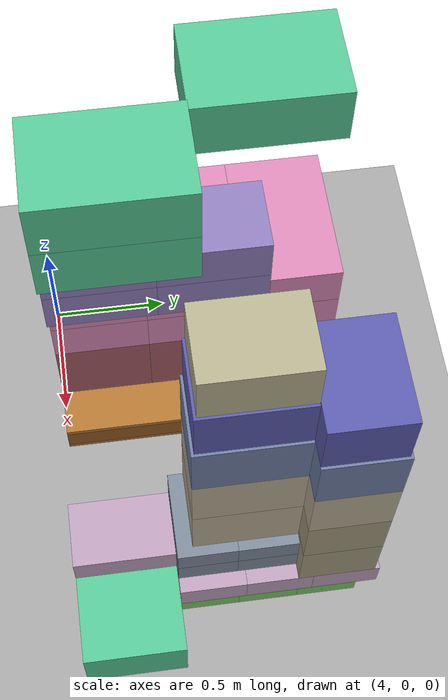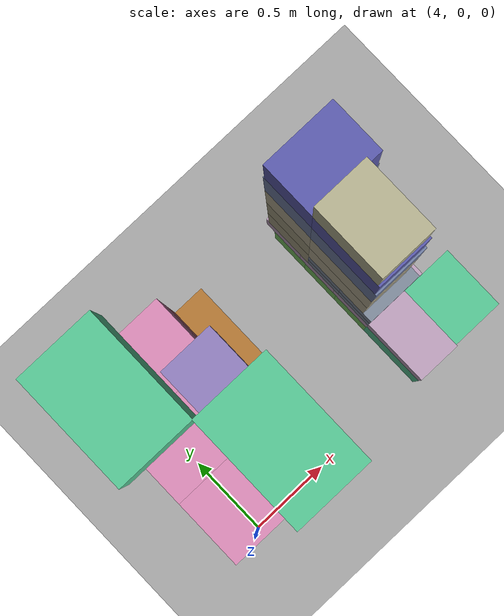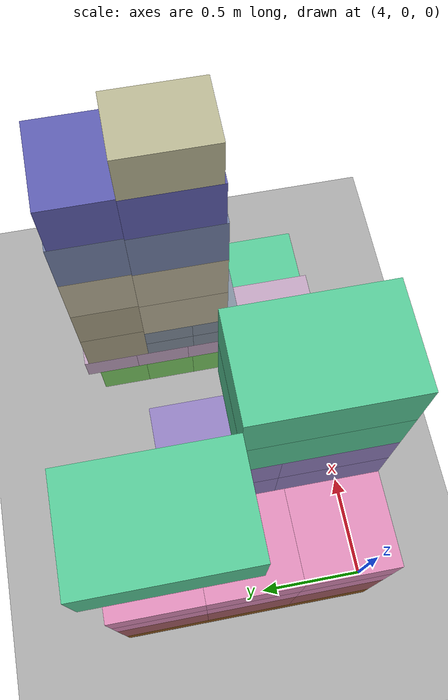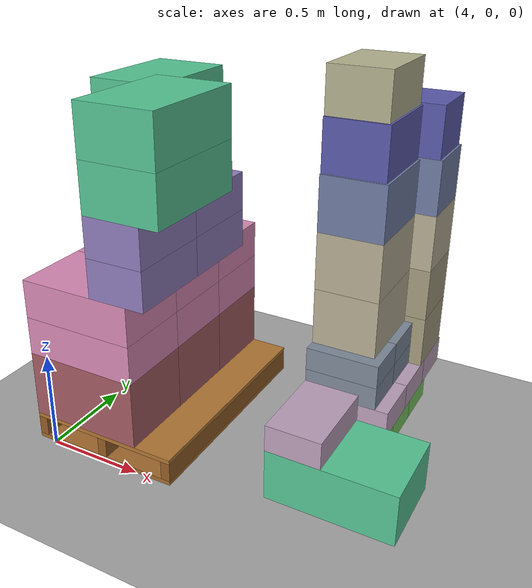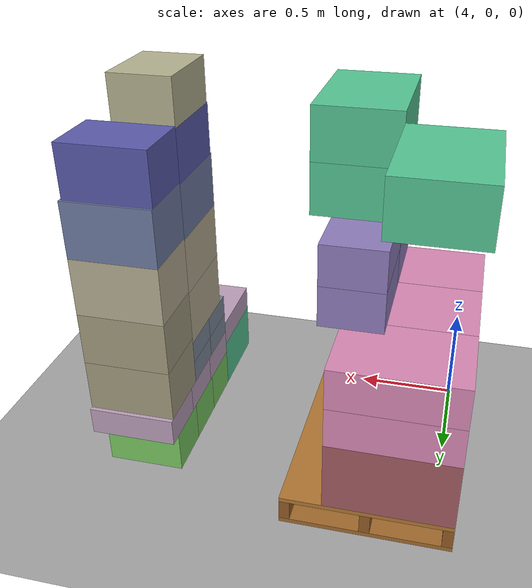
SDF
<sdf version="1.10">
 <world name="pallet_towers">
  <model name="ground_plane">
   <static>true</static>
   <link name="link">
    <collision name="collision">
     <geometry><plane><normal>0 0 1</normal><size>30 30</size></plane></geometry>
     <surface>
      <friction><ode><mu>0.55</mu><mu2>0.55</mu2></ode></friction>
      <bounce><restitution_coefficient>0</restitution_coefficient><threshold>100000</threshold></bounce>
      <contact><ode><kp>1000000</kp><kd>100</kd><max_vel>1</max_vel><min_depth>0.0005</min_depth></ode></contact>
     </surface>
    </collision>
    <visual name="visual">
     <geometry><plane><normal>0 0 1</normal><size>30 30</size></plane></geometry>
     <material><ambient>0.65 0.65 0.65 1</ambient><diffuse>0.65 0.65 0.65 1</diffuse></material>
    </visual>
   </link>
  </model>
  <model name="pallet_04_P04">
   <static>false</static>
   <pose>4.3 0.6 0.002 0 0 0</pose>
   <allow_auto_disable>false</allow_auto_disable>
   <link name="body">
    <inertial>
     <pose>0 0 0.072 0 0 0</pose>
     <mass>25</mass>
     <inertia>
      <ixx>3.07216082</ixx>
      <ixy>0</ixy>
      <ixz>0</ixz>
      <iyy>1.70896776</iyy>
      <iyz>0</iyz>
      <izz>4.63680694</izz>
     </inertia>
    </inertial>
    <collision name="bottom_deck_collision">
     <pose>0 0 0.011 0 0 0</pose>
     <geometry><box><size>0.8 1.2 0.022</size></box></geometry>
     <surface>
      <friction><ode><mu>0.55</mu><mu2>0.55</mu2></ode></friction>
      <bounce><restitution_coefficient>0</restitution_coefficient><threshold>100000</threshold></bounce>
      <contact><ode><kp>1000000</kp><kd>100</kd><max_vel>1</max_vel><min_depth>0.0005</min_depth></ode></contact>
     </surface>
    </collision>
    <visual name="bottom_deck_visual">
     <pose>0 0 0.011 0 0 0</pose>
     <geometry><box><size>0.8 1.2 0.022</size></box></geometry>
     <material>
      <ambient>0.46 0.28 0.10 1</ambient>
      <diffuse>0.64 0.42 0.18 1</diffuse>
      <specular>0.03 0.03 0.03 1</specular>
     </material>
    </visual>
    <collision name="left_stringer_collision">
     <pose>-0.375 0 0.072 0 0 0</pose>
     <geometry><box><size>0.05 1.2 0.1</size></box></geometry>
     <surface>
      <friction><ode><mu>0.55</mu><mu2>0.55</mu2></ode></friction>
      <bounce><restitution_coefficient>0</restitution_coefficient><threshold>100000</threshold></bounce>
      <contact><ode><kp>1000000</kp><kd>100</kd><max_vel>1</max_vel><min_depth>0.0005</min_depth></ode></contact>
     </surface>
    </collision>
    <visual name="left_stringer_visual">
     <pose>-0.375 0 0.072 0 0 0</pose>
     <geometry><box><size>0.05 1.2 0.1</size></box></geometry>
     <material>
      <ambient>0.42 0.25 0.09 1</ambient>
      <diffuse>0.58 0.36 0.14 1</diffuse>
      <specular>0.03 0.03 0.03 1</specular>
     </material>
    </visual>
    <collision name="centre_stringer_collision">
     <pose>0 0 0.072 0 0 0</pose>
     <geometry><box><size>0.05 1.2 0.1</size></box></geometry>
     <surface>
      <friction><ode><mu>0.55</mu><mu2>0.55</mu2></ode></friction>
      <bounce><restitution_coefficient>0</restitution_coefficient><threshold>100000</threshold></bounce>
      <contact><ode><kp>1000000</kp><kd>100</kd><max_vel>1</max_vel><min_depth>0.0005</min_depth></ode></contact>
     </surface>
    </collision>
    <visual name="centre_stringer_visual">
     <pose>0 0 0.072 0 0 0</pose>
     <geometry><box><size>0.05 1.2 0.1</size></box></geometry>
     <material>
      <ambient>0.42 0.25 0.09 1</ambient>
      <diffuse>0.58 0.36 0.14 1</diffuse>
      <specular>0.03 0.03 0.03 1</specular>
     </material>
    </visual>
    <collision name="right_stringer_collision">
     <pose>0.375 0 0.072 0 0 0</pose>
     <geometry><box><size>0.05 1.2 0.1</size></box></geometry>
     <surface>
      <friction><ode><mu>0.55</mu><mu2>0.55</mu2></ode></friction>
      <bounce><restitution_coefficient>0</restitution_coefficient><threshold>100000</threshold></bounce>
      <contact><ode><kp>1000000</kp><kd>100</kd><max_vel>1</max_vel><min_depth>0.0005</min_depth></ode></contact>
     </surface>
    </collision>
    <visual name="right_stringer_visual">
     <pose>0.375 0 0.072 0 0 0</pose>
     <geometry><box><size>0.05 1.2 0.1</size></box></geometry>
     <material>
      <ambient>0.42 0.25 0.09 1</ambient>
      <diffuse>0.58 0.36 0.14 1</diffuse>
      <specular>0.03 0.03 0.03 1</specular>
     </material>
    </visual>
    <collision name="top_deck_collision">
     <pose>0 0 0.133 0 0 0</pose>
     <geometry><box><size>0.8 1.2 0.022</size></box></geometry>
     <surface>
      <friction><ode><mu>0.55</mu><mu2>0.55</mu2></ode></friction>
      <bounce><restitution_coefficient>0</restitution_coefficient><threshold>100000</threshold></bounce>
      <contact><ode><kp>1000000</kp><kd>100</kd><max_vel>1</max_vel><min_depth>0.0005</min_depth></ode></contact>
     </surface>
    </collision>
    <visual name="top_deck_visual">
     <pose>0 0 0.133 0 0 0</pose>
     <geometry><box><size>0.8 1.2 0.022</size></box></geometry>
     <material>
      <ambient>0.50 0.31 0.11 1</ambient>
      <diffuse>0.70 0.47 0.20 1</diffuse>
      <specular>0.03 0.03 0.03 1</specular>
     </material>
    </visual>
   </link>
  </model>
  <model name="box_p04_0001_CHIPS_005_CHIPS">
   <static>false</static>
   <pose>4.2 0.2 0.321 0 0 0</pose>
   <link name="body">
    <inertial>
     <mass>3.5</mass>
     <inertia>
      <ixx>0.0823958333</ixx>
      <ixy>0</ixy>
      <ixz>0</ixz>
      <iyy>0.140729167</iyy>
      <iyz>0</iyz>
      <izz>0.151666667</izz>
     </inertia>
    </inertial>
    <collision name="collision">
     <geometry><box><size>0.6 0.4 0.35</size></box></geometry>
     <surface>
      <friction><ode><mu>0.55</mu><mu2>0.55</mu2></ode></friction>
      <bounce><restitution_coefficient>0</restitution_coefficient><threshold>100000</threshold></bounce>
      <contact><ode><kp>1000000</kp><kd>100</kd><max_vel>1</max_vel><min_depth>0.0005</min_depth></ode></contact>
     </surface>
    </collision>
    <visual name="visual">
     <geometry><box><size>0.6 0.4 0.35</size></box></geometry>
     <material>
      <ambient>0.643137255 0.360784314 0.388235294 1</ambient>
      <diffuse>0.643137255 0.360784314 0.388235294 1</diffuse>
      <specular>0.05 0.05 0.05 1</specular>
     </material>
    </visual>
   </link>
  </model>
  <model name="box_p04_0002_CHIPS_006_CHIPS">
   <static>false</static>
   <pose>4.2 0.6 0.321 0 0 0</pose>
   <link name="body">
    <inertial>
     <mass>3.5</mass>
     <inertia>
      <ixx>0.0823958333</ixx>
      <ixy>0</ixy>
      <ixz>0</ixz>
      <iyy>0.140729167</iyy>
      <iyz>0</iyz>
      <izz>0.151666667</izz>
     </inertia>
    </inertial>
    <collision name="collision">
     <geometry><box><size>0.6 0.4 0.35</size></box></geometry>
     <surface>
      <friction><ode><mu>0.55</mu><mu2>0.55</mu2></ode></friction>
      <bounce><restitution_coefficient>0</restitution_coefficient><threshold>100000</threshold></bounce>
      <contact><ode><kp>1000000</kp><kd>100</kd><max_vel>1</max_vel><min_depth>0.0005</min_depth></ode></contact>
     </surface>
    </collision>
    <visual name="visual">
     <geometry><box><size>0.6 0.4 0.35</size></box></geometry>
     <material>
      <ambient>0.643137255 0.360784314 0.388235294 1</ambient>
      <diffuse>0.643137255 0.360784314 0.388235294 1</diffuse>
      <specular>0.05 0.05 0.05 1</specular>
     </material>
    </visual>
   </link>
  </model>
  <model name="box_p04_0003_CHIPS_007_CHIPS">
   <static>false</static>
   <pose>4.2 1 0.321 0 0 0</pose>
   <link name="body">
    <inertial>
     <mass>3.5</mass>
     <inertia>
      <ixx>0.0823958333</ixx>
      <ixy>0</ixy>
      <ixz>0</ixz>
      <iyy>0.140729167</iyy>
      <iyz>0</iyz>
      <izz>0.151666667</izz>
     </inertia>
    </inertial>
    <collision name="collision">
     <geometry><box><size>0.6 0.4 0.35</size></box></geometry>
     <surface>
      <friction><ode><mu>0.55</mu><mu2>0.55</mu2></ode></friction>
      <bounce><restitution_coefficient>0</restitution_coefficient><threshold>100000</threshold></bounce>
      <contact><ode><kp>1000000</kp><kd>100</kd><max_vel>1</max_vel><min_depth>0.0005</min_depth></ode></contact>
     </surface>
    </collision>
    <visual name="visual">
     <geometry><box><size>0.6 0.4 0.35</size></box></geometry>
     <material>
      <ambient>0.643137255 0.360784314 0.388235294 1</ambient>
      <diffuse>0.643137255 0.360784314 0.388235294 1</diffuse>
      <specular>0.05 0.05 0.05 1</specular>
     </material>
    </visual>
   </link>
  </model>
  <model name="box_p04_0004_POTATO_001_POTATO">
   <static>false</static>
   <pose>4.2 0.2 0.596 0 0 0</pose>
   <link name="body">
    <inertial>
     <mass>25</mass>
     <inertia>
      <ixx>0.416666667</ixx>
      <ixy>0</ixy>
      <ixz>0</ixz>
      <iyy>0.833333333</iyy>
      <iyz>0</iyz>
      <izz>1.08333333</izz>
     </inertia>
    </inertial>
    <collision name="collision">
     <geometry><box><size>0.6 0.4 0.2</size></box></geometry>
     <surface>
      <friction><ode><mu>0.55</mu><mu2>0.55</mu2></ode></friction>
      <bounce><restitution_coefficient>0</restitution_coefficient><threshold>100000</threshold></bounce>
      <contact><ode><kp>1000000</kp><kd>100</kd><max_vel>1</max_vel><min_depth>0.0005</min_depth></ode></contact>
     </surface>
    </collision>
    <visual name="visual">
     <geometry><box><size>0.6 0.4 0.2</size></box></geometry>
     <material>
      <ambient>0.854901961 0.541176471 0.71372549 1</ambient>
      <diffuse>0.854901961 0.541176471 0.71372549 1</diffuse>
      <specular>0.05 0.05 0.05 1</specular>
     </material>
    </visual>
   </link>
  </model>
  <model name="box_p04_0005_POTATO_002_POTATO">
   <static>false</static>
   <pose>4.2 0.6 0.596 0 0 0</pose>
   <link name="body">
    <inertial>
     <mass>25</mass>
     <inertia>
      <ixx>0.416666667</ixx>
      <ixy>0</ixy>
      <ixz>0</ixz>
      <iyy>0.833333333</iyy>
      <iyz>0</iyz>
      <izz>1.08333333</izz>
     </inertia>
    </inertial>
    <collision name="collision">
     <geometry><box><size>0.6 0.4 0.2</size></box></geometry>
     <surface>
      <friction><ode><mu>0.55</mu><mu2>0.55</mu2></ode></friction>
      <bounce><restitution_coefficient>0</restitution_coefficient><threshold>100000</threshold></bounce>
      <contact><ode><kp>1000000</kp><kd>100</kd><max_vel>1</max_vel><min_depth>0.0005</min_depth></ode></contact>
     </surface>
    </collision>
    <visual name="visual">
     <geometry><box><size>0.6 0.4 0.2</size></box></geometry>
     <material>
      <ambient>0.854901961 0.541176471 0.71372549 1</ambient>
      <diffuse>0.854901961 0.541176471 0.71372549 1</diffuse>
      <specular>0.05 0.05 0.05 1</specular>
     </material>
    </visual>
   </link>
  </model>
  <model name="box_p04_0006_POTATO_003_POTATO">
   <static>false</static>
   <pose>4.2 1 0.596 0 0 0</pose>
   <link name="body">
    <inertial>
     <mass>25</mass>
     <inertia>
      <ixx>0.416666667</ixx>
      <ixy>0</ixy>
      <ixz>0</ixz>
      <iyy>0.833333333</iyy>
      <iyz>0</iyz>
      <izz>1.08333333</izz>
     </inertia>
    </inertial>
    <collision name="collision">
     <geometry><box><size>0.6 0.4 0.2</size></box></geometry>
     <surface>
      <friction><ode><mu>0.55</mu><mu2>0.55</mu2></ode></friction>
      <bounce><restitution_coefficient>0</restitution_coefficient><threshold>100000</threshold></bounce>
      <contact><ode><kp>1000000</kp><kd>100</kd><max_vel>1</max_vel><min_depth>0.0005</min_depth></ode></contact>
     </surface>
    </collision>
    <visual name="visual">
     <geometry><box><size>0.6 0.4 0.2</size></box></geometry>
     <material>
      <ambient>0.854901961 0.541176471 0.71372549 1</ambient>
      <diffuse>0.854901961 0.541176471 0.71372549 1</diffuse>
      <specular>0.05 0.05 0.05 1</specular>
     </material>
    </visual>
   </link>
  </model>
  <model name="box_p04_0007_POTATO_004_POTATO">
   <static>false</static>
   <pose>4.2 0.2 0.796 0 0 0</pose>
   <link name="body">
    <inertial>
     <mass>25</mass>
     <inertia>
      <ixx>0.416666667</ixx>
      <ixy>0</ixy>
      <ixz>0</ixz>
      <iyy>0.833333333</iyy>
      <iyz>0</iyz>
      <izz>1.08333333</izz>
     </inertia>
    </inertial>
    <collision name="collision">
     <geometry><box><size>0.6 0.4 0.2</size></box></geometry>
     <surface>
      <friction><ode><mu>0.55</mu><mu2>0.55</mu2></ode></friction>
      <bounce><restitution_coefficient>0</restitution_coefficient><threshold>100000</threshold></bounce>
      <contact><ode><kp>1000000</kp><kd>100</kd><max_vel>1</max_vel><min_depth>0.0005</min_depth></ode></contact>
     </surface>
    </collision>
    <visual name="visual">
     <geometry><box><size>0.6 0.4 0.2</size></box></geometry>
     <material>
      <ambient>0.854901961 0.541176471 0.71372549 1</ambient>
      <diffuse>0.854901961 0.541176471 0.71372549 1</diffuse>
      <specular>0.05 0.05 0.05 1</specular>
     </material>
    </visual>
   </link>
  </model>
  <model name="box_p04_0008_POTATO_005_POTATO">
   <static>false</static>
   <pose>4.2 0.6 0.796 0 0 0</pose>
   <link name="body">
    <inertial>
     <mass>25</mass>
     <inertia>
      <ixx>0.416666667</ixx>
      <ixy>0</ixy>
      <ixz>0</ixz>
      <iyy>0.833333333</iyy>
      <iyz>0</iyz>
      <izz>1.08333333</izz>
     </inertia>
    </inertial>
    <collision name="collision">
     <geometry><box><size>0.6 0.4 0.2</size></box></geometry>
     <surface>
      <friction><ode><mu>0.55</mu><mu2>0.55</mu2></ode></friction>
      <bounce><restitution_coefficient>0</restitution_coefficient><threshold>100000</threshold></bounce>
      <contact><ode><kp>1000000</kp><kd>100</kd><max_vel>1</max_vel><min_depth>0.0005</min_depth></ode></contact>
     </surface>
    </collision>
    <visual name="visual">
     <geometry><box><size>0.6 0.4 0.2</size></box></geometry>
     <material>
      <ambient>0.854901961 0.541176471 0.71372549 1</ambient>
      <diffuse>0.854901961 0.541176471 0.71372549 1</diffuse>
      <specular>0.05 0.05 0.05 1</specular>
     </material>
    </visual>
   </link>
  </model>
  <model name="box_p04_0009_POTATO_006_POTATO">
   <static>false</static>
   <pose>4.2 1 0.796 0 0 0</pose>
   <link name="body">
    <inertial>
     <mass>25</mass>
     <inertia>
      <ixx>0.416666667</ixx>
      <ixy>0</ixy>
      <ixz>0</ixz>
      <iyy>0.833333333</iyy>
      <iyz>0</iyz>
      <izz>1.08333333</izz>
     </inertia>
    </inertial>
    <collision name="collision">
     <geometry><box><size>0.6 0.4 0.2</size></box></geometry>
     <surface>
      <friction><ode><mu>0.55</mu><mu2>0.55</mu2></ode></friction>
      <bounce><restitution_coefficient>0</restitution_coefficient><threshold>100000</threshold></bounce>
      <contact><ode><kp>1000000</kp><kd>100</kd><max_vel>1</max_vel><min_depth>0.0005</min_depth></ode></contact>
     </surface>
    </collision>
    <visual name="visual">
     <geometry><box><size>0.6 0.4 0.2</size></box></geometry>
     <material>
      <ambient>0.854901961 0.541176471 0.71372549 1</ambient>
      <diffuse>0.854901961 0.541176471 0.71372549 1</diffuse>
      <specular>0.05 0.05 0.05 1</specular>
     </material>
    </visual>
   </link>
  </model>
  <model name="box_p04_0016_RICE_001_RICE">
   <static>false</static>
   <pose>4.45 0.22 0.996 0 0 0</pose>
   <link name="body">
    <inertial>
     <mass>20</mass>
     <inertia>
      <ixx>0.389333333</ixx>
      <ixy>0</ixy>
      <ixz>0</ixz>
      <iyy>0.216666667</iyy>
      <iyz>0</iyz>
      <izz>0.472666667</izz>
     </inertia>
    </inertial>
    <collision name="collision">
     <geometry><box><size>0.3 0.44 0.2</size></box></geometry>
     <surface>
      <friction><ode><mu>0.55</mu><mu2>0.55</mu2></ode></friction>
      <bounce><restitution_coefficient>0</restitution_coefficient><threshold>100000</threshold></bounce>
      <contact><ode><kp>1000000</kp><kd>100</kd><max_vel>1</max_vel><min_depth>0.0005</min_depth></ode></contact>
     </surface>
    </collision>
    <visual name="visual">
     <geometry><box><size>0.3 0.44 0.2</size></box></geometry>
     <material>
      <ambient>0.564705882 0.494117647 0.741176471 1</ambient>
      <diffuse>0.564705882 0.494117647 0.741176471 1</diffuse>
      <specular>0.05 0.05 0.05 1</specular>
     </material>
    </visual>
   </link>
  </model>
  <model name="box_p04_0017_RICE_002_RICE">
   <static>false</static>
   <pose>4.45 0.66 0.996 0 0 0</pose>
   <link name="body">
    <inertial>
     <mass>20</mass>
     <inertia>
      <ixx>0.389333333</ixx>
      <ixy>0</ixy>
      <ixz>0</ixz>
      <iyy>0.216666667</iyy>
      <iyz>0</iyz>
      <izz>0.472666667</izz>
     </inertia>
    </inertial>
    <collision name="collision">
     <geometry><box><size>0.3 0.44 0.2</size></box></geometry>
     <surface>
      <friction><ode><mu>0.55</mu><mu2>0.55</mu2></ode></friction>
      <bounce><restitution_coefficient>0</restitution_coefficient><threshold>100000</threshold></bounce>
      <contact><ode><kp>1000000</kp><kd>100</kd><max_vel>1</max_vel><min_depth>0.0005</min_depth></ode></contact>
     </surface>
    </collision>
    <visual name="visual">
     <geometry><box><size>0.3 0.44 0.2</size></box></geometry>
     <material>
      <ambient>0.564705882 0.494117647 0.741176471 1</ambient>
      <diffuse>0.564705882 0.494117647 0.741176471 1</diffuse>
      <specular>0.05 0.05 0.05 1</specular>
     </material>
    </visual>
   </link>
  </model>
  <model name="box_p04_0018_RICE_003_RICE">
   <static>false</static>
   <pose>4.45 0.22 1.196 0 0 0</pose>
   <link name="body">
    <inertial>
     <mass>20</mass>
     <inertia>
      <ixx>0.389333333</ixx>
      <ixy>0</ixy>
      <ixz>0</ixz>
      <iyy>0.216666667</iyy>
      <iyz>0</iyz>
      <izz>0.472666667</izz>
     </inertia>
    </inertial>
    <collision name="collision">
     <geometry><box><size>0.3 0.44 0.2</size></box></geometry>
     <surface>
      <friction><ode><mu>0.55</mu><mu2>0.55</mu2></ode></friction>
      <bounce><restitution_coefficient>0</restitution_coefficient><threshold>100000</threshold></bounce>
      <contact><ode><kp>1000000</kp><kd>100</kd><max_vel>1</max_vel><min_depth>0.0005</min_depth></ode></contact>
     </surface>
    </collision>
    <visual name="visual">
     <geometry><box><size>0.3 0.44 0.2</size></box></geometry>
     <material>
      <ambient>0.564705882 0.494117647 0.741176471 1</ambient>
      <diffuse>0.564705882 0.494117647 0.741176471 1</diffuse>
      <specular>0.05 0.05 0.05 1</specular>
     </material>
    </visual>
   </link>
  </model>
  <model name="box_p04_0019_RICE_004_RICE">
   <static>false</static>
   <pose>4.45 0.66 1.196 0 0 0</pose>
   <link name="body">
    <inertial>
     <mass>20</mass>
     <inertia>
      <ixx>0.389333333</ixx>
      <ixy>0</ixy>
      <ixz>0</ixz>
      <iyy>0.216666667</iyy>
      <iyz>0</iyz>
      <izz>0.472666667</izz>
     </inertia>
    </inertial>
    <collision name="collision">
     <geometry><box><size>0.3 0.44 0.2</size></box></geometry>
     <surface>
      <friction><ode><mu>0.55</mu><mu2>0.55</mu2></ode></friction>
      <bounce><restitution_coefficient>0</restitution_coefficient><threshold>100000</threshold></bounce>
      <contact><ode><kp>1000000</kp><kd>100</kd><max_vel>1</max_vel><min_depth>0.0005</min_depth></ode></contact>
     </surface>
    </collision>
    <visual name="visual">
     <geometry><box><size>0.3 0.44 0.2</size></box></geometry>
     <material>
      <ambient>0.564705882 0.494117647 0.741176471 1</ambient>
      <diffuse>0.564705882 0.494117647 0.741176471 1</diffuse>
      <specular>0.05 0.05 0.05 1</specular>
     </material>
    </visual>
   </link>
  </model>
  <model name="box_p04_0023_DIAPER_002_DIAPER">
   <static>false</static>
   <pose>4.5 0.3 1.421 0 0 0</pose>
   <link name="body">
    <inertial>
     <mass>7</mass>
     <inertia>
      <ixx>0.246458333</ixx>
      <ixy>0</ixy>
      <ixz>0</ixz>
      <iyy>0.129791667</iyy>
      <iyz>0</iyz>
      <izz>0.303333333</izz>
     </inertia>
    </inertial>
    <collision name="collision">
     <geometry><box><size>0.4 0.6 0.25</size></box></geometry>
     <surface>
      <friction><ode><mu>0.55</mu><mu2>0.55</mu2></ode></friction>
      <bounce><restitution_coefficient>0</restitution_coefficient><threshold>100000</threshold></bounce>
      <contact><ode><kp>1000000</kp><kd>100</kd><max_vel>1</max_vel><min_depth>0.0005</min_depth></ode></contact>
     </surface>
    </collision>
    <visual name="visual">
     <geometry><box><size>0.4 0.6 0.25</size></box></geometry>
     <material>
      <ambient>0.337254902 0.780392157 0.584313725 1</ambient>
      <diffuse>0.337254902 0.780392157 0.584313725 1</diffuse>
      <specular>0.05 0.05 0.05 1</specular>
     </material>
    </visual>
   </link>
  </model>
  <model name="box_p04_0025_DIAPER_004_DIAPER">
   <static>false</static>
   <pose>4.5 0.3 1.671 0 0 0</pose>
   <link name="body">
    <inertial>
     <mass>7</mass>
     <inertia>
      <ixx>0.246458333</ixx>
      <ixy>0</ixy>
      <ixz>0</ixz>
      <iyy>0.129791667</iyy>
      <iyz>0</iyz>
      <izz>0.303333333</izz>
     </inertia>
    </inertial>
    <collision name="collision">
     <geometry><box><size>0.4 0.6 0.25</size></box></geometry>
     <surface>
      <friction><ode><mu>0.55</mu><mu2>0.55</mu2></ode></friction>
      <bounce><restitution_coefficient>0</restitution_coefficient><threshold>100000</threshold></bounce>
      <contact><ode><kp>1000000</kp><kd>100</kd><max_vel>1</max_vel><min_depth>0.0005</min_depth></ode></contact>
     </surface>
    </collision>
    <visual name="visual">
     <geometry><box><size>0.4 0.6 0.25</size></box></geometry>
     <material>
      <ambient>0.337254902 0.780392157 0.584313725 1</ambient>
      <diffuse>0.337254902 0.780392157 0.584313725 1</diffuse>
      <specular>0.05 0.05 0.05 1</specular>
     </material>
    </visual>
   </link>
  </model>
  <model name="box_p04_0026_DIAPER_005_DIAPER">
   <static>false</static>
   <pose>4.1 0.9 1.621 0 0 0</pose>
   <link name="body">
    <inertial>
     <mass>7</mass>
     <inertia>
      <ixx>0.246458333</ixx>
      <ixy>0</ixy>
      <ixz>0</ixz>
      <iyy>0.129791667</iyy>
      <iyz>0</iyz>
      <izz>0.303333333</izz>
     </inertia>
    </inertial>
    <collision name="collision">
     <geometry><box><size>0.4 0.6 0.25</size></box></geometry>
     <surface>
      <friction><ode><mu>0.55</mu><mu2>0.55</mu2></ode></friction>
      <bounce><restitution_coefficient>0</restitution_coefficient><threshold>100000</threshold></bounce>
      <contact><ode><kp>1000000</kp><kd>100</kd><max_vel>1</max_vel><min_depth>0.0005</min_depth></ode></contact>
     </surface>
    </collision>
    <visual name="visual">
     <geometry><box><size>0.4 0.6 0.25</size></box></geometry>
     <material>
      <ambient>0.337254902 0.780392157 0.584313725 1</ambient>
      <diffuse>0.337254902 0.780392157 0.584313725 1</diffuse>
      <specular>0.05 0.05 0.05 1</specular>
     </material>
    </visual>
   </link>
  </model>
  <model name="box_p05_0001_DIAPER_006_DIAPER">
   <static>false</static>
   <pose>5.5 0.2 0.271 0 0 0</pose>
   <link name="body">
    <inertial>
     <mass>7</mass>
     <inertia>
      <ixx>0.129791667</ixx>
      <ixy>0</ixy>
      <ixz>0</ixz>
      <iyy>0.246458333</iyy>
      <iyz>0</iyz>
      <izz>0.303333333</izz>
     </inertia>
    </inertial>
    <collision name="collision">
     <geometry><box><size>0.6 0.4 0.25</size></box></geometry>
     <surface>
      <friction><ode><mu>0.55</mu><mu2>0.55</mu2></ode></friction>
      <bounce><restitution_coefficient>0</restitution_coefficient><threshold>100000</threshold></bounce>
      <contact><ode><kp>1000000</kp><kd>100</kd><max_vel>1</max_vel><min_depth>0.0005</min_depth></ode></contact>
     </surface>
    </collision>
    <visual name="visual">
     <geometry><box><size>0.6 0.4 0.25</size></box></geometry>
     <material>
      <ambient>0.337254902 0.780392157 0.584313725 1</ambient>
      <diffuse>0.337254902 0.780392157 0.584313725 1</diffuse>
      <specular>0.05 0.05 0.05 1</specular>
     </material>
    </visual>
   </link>
  </model>
  <model name="box_p05_0002_TEA_001_TEA">
   <static>false</static>
   <pose>5.38 0.52 0.246 0 0 0</pose>
   <link name="body">
    <inertial>
     <mass>5</mass>
     <inertia>
      <ixx>0.0406666667</ixx>
      <ixy>0</ixy>
      <ixz>0</ixz>
      <iyy>0.0706666667</iyy>
      <iyz>0</iyz>
      <izz>0.078</izz>
     </inertia>
    </inertial>
    <collision name="collision">
     <geometry><box><size>0.36 0.24 0.2</size></box></geometry>
     <surface>
      <friction><ode><mu>0.55</mu><mu2>0.55</mu2></ode></friction>
      <bounce><restitution_coefficient>0</restitution_coefficient><threshold>100000</threshold></bounce>
      <contact><ode><kp>1000000</kp><kd>100</kd><max_vel>1</max_vel><min_depth>0.0005</min_depth></ode></contact>
     </surface>
    </collision>
    <visual name="visual">
     <geometry><box><size>0.36 0.24 0.2</size></box></geometry>
     <material>
      <ambient>0.478431373 0.788235294 0.388235294 1</ambient>
      <diffuse>0.478431373 0.788235294 0.388235294 1</diffuse>
      <specular>0.05 0.05 0.05 1</specular>
     </material>
    </visual>
   </link>
  </model>
  <model name="box_p05_0004_TEA_003_TEA">
   <static>false</static>
   <pose>5.38 0.76 0.246 0 0 0</pose>
   <link name="body">
    <inertial>
     <mass>5</mass>
     <inertia>
      <ixx>0.0406666667</ixx>
      <ixy>0</ixy>
      <ixz>0</ixz>
      <iyy>0.0706666667</iyy>
      <iyz>0</iyz>
      <izz>0.078</izz>
     </inertia>
    </inertial>
    <collision name="collision">
     <geometry><box><size>0.36 0.24 0.2</size></box></geometry>
     <surface>
      <friction><ode><mu>0.55</mu><mu2>0.55</mu2></ode></friction>
      <bounce><restitution_coefficient>0</restitution_coefficient><threshold>100000</threshold></bounce>
      <contact><ode><kp>1000000</kp><kd>100</kd><max_vel>1</max_vel><min_depth>0.0005</min_depth></ode></contact>
     </surface>
    </collision>
    <visual name="visual">
     <geometry><box><size>0.36 0.24 0.2</size></box></geometry>
     <material>
      <ambient>0.478431373 0.788235294 0.388235294 1</ambient>
      <diffuse>0.478431373 0.788235294 0.388235294 1</diffuse>
      <specular>0.05 0.05 0.05 1</specular>
     </material>
    </visual>
   </link>
  </model>
  <model name="box_p05_0006_TEA_005_TEA">
   <static>false</static>
   <pose>5.38 1 0.246 0 0 0</pose>
   <link name="body">
    <inertial>
     <mass>5</mass>
     <inertia>
      <ixx>0.0406666667</ixx>
      <ixy>0</ixy>
      <ixz>0</ixz>
      <iyy>0.0706666667</iyy>
      <iyz>0</iyz>
      <izz>0.078</izz>
     </inertia>
    </inertial>
    <collision name="collision">
     <geometry><box><size>0.36 0.24 0.2</size></box></geometry>
     <surface>
      <friction><ode><mu>0.55</mu><mu2>0.55</mu2></ode></friction>
      <bounce><restitution_coefficient>0</restitution_coefficient><threshold>100000</threshold></bounce>
      <contact><ode><kp>1000000</kp><kd>100</kd><max_vel>1</max_vel><min_depth>0.0005</min_depth></ode></contact>
     </surface>
    </collision>
    <visual name="visual">
     <geometry><box><size>0.36 0.24 0.2</size></box></geometry>
     <material>
      <ambient>0.478431373 0.788235294 0.388235294 1</ambient>
      <diffuse>0.478431373 0.788235294 0.388235294 1</diffuse>
      <specular>0.05 0.05 0.05 1</specular>
     </material>
    </visual>
   </link>
  </model>
  <model name="box_p05_0008_BEER24_001_BEER24">
   <static>false</static>
   <pose>5.4 0.53 0.411 0 0 0</pose>
   <link name="body">
    <inertial>
     <mass>9</mass>
     <inertia><ixx>0.063375</ixx><ixy>0</ixy><ixz>0</ixz><iyy>0.132675</iyy><iyz>0</iyz><izz>0.1707</izz></inertia>
    </inertial>
    <collision name="collision">
     <geometry><box><size>0.4 0.26 0.13</size></box></geometry>
     <surface>
      <friction><ode><mu>0.55</mu><mu2>0.55</mu2></ode></friction>
      <bounce><restitution_coefficient>0</restitution_coefficient><threshold>100000</threshold></bounce>
      <contact><ode><kp>1000000</kp><kd>100</kd><max_vel>1</max_vel><min_depth>0.0005</min_depth></ode></contact>
     </surface>
    </collision>
    <visual name="visual">
     <geometry><box><size>0.4 0.26 0.13</size></box></geometry>
     <material>
      <ambient>0.741176471 0.62745098 0.737254902 1</ambient>
      <diffuse>0.741176471 0.62745098 0.737254902 1</diffuse>
      <specular>0.05 0.05 0.05 1</specular>
     </material>
    </visual>
   </link>
  </model>
  <model name="box_p05_0010_BEER24_003_BEER24">
   <static>false</static>
   <pose>5.4 0.79 0.411 0 0 0</pose>
   <link name="body">
    <inertial>
     <mass>9</mass>
     <inertia><ixx>0.063375</ixx><ixy>0</ixy><ixz>0</ixz><iyy>0.132675</iyy><iyz>0</iyz><izz>0.1707</izz></inertia>
    </inertial>
    <collision name="collision">
     <geometry><box><size>0.4 0.26 0.13</size></box></geometry>
     <surface>
      <friction><ode><mu>0.55</mu><mu2>0.55</mu2></ode></friction>
      <bounce><restitution_coefficient>0</restitution_coefficient><threshold>100000</threshold></bounce>
      <contact><ode><kp>1000000</kp><kd>100</kd><max_vel>1</max_vel><min_depth>0.0005</min_depth></ode></contact>
     </surface>
    </collision>
    <visual name="visual">
     <geometry><box><size>0.4 0.26 0.13</size></box></geometry>
     <material>
      <ambient>0.741176471 0.62745098 0.737254902 1</ambient>
      <diffuse>0.741176471 0.62745098 0.737254902 1</diffuse>
      <specular>0.05 0.05 0.05 1</specular>
     </material>
    </visual>
   </link>
  </model>
  <model name="box_p05_0012_BEER24_005_BEER24">
   <static>false</static>
   <pose>5.4 1.05 0.411 0 0 0</pose>
   <link name="body">
    <inertial>
     <mass>9</mass>
     <inertia><ixx>0.063375</ixx><ixy>0</ixy><ixz>0</ixz><iyy>0.132675</iyy><iyz>0</iyz><izz>0.1707</izz></inertia>
    </inertial>
    <collision name="collision">
     <geometry><box><size>0.4 0.26 0.13</size></box></geometry>
     <surface>
      <friction><ode><mu>0.55</mu><mu2>0.55</mu2></ode></friction>
      <bounce><restitution_coefficient>0</restitution_coefficient><threshold>100000</threshold></bounce>
      <contact><ode><kp>1000000</kp><kd>100</kd><max_vel>1</max_vel><min_depth>0.0005</min_depth></ode></contact>
     </surface>
    </collision>
    <visual name="visual">
     <geometry><box><size>0.4 0.26 0.13</size></box></geometry>
     <material>
      <ambient>0.741176471 0.62745098 0.737254902 1</ambient>
      <diffuse>0.741176471 0.62745098 0.737254902 1</diffuse>
      <specular>0.05 0.05 0.05 1</specular>
     </material>
    </visual>
   </link>
  </model>
  <model name="box_p05_0013_BEER24_006_BEER24">
   <static>false</static>
   <pose>5.33 0.2 0.461 0 0 0</pose>
   <link name="body">
    <inertial>
     <mass>9</mass>
     <inertia><ixx>0.132675</ixx><ixy>0</ixy><ixz>0</ixz><iyy>0.063375</iyy><iyz>0</iyz><izz>0.1707</izz></inertia>
    </inertial>
    <collision name="collision">
     <geometry><box><size>0.26 0.4 0.13</size></box></geometry>
     <surface>
      <friction><ode><mu>0.55</mu><mu2>0.55</mu2></ode></friction>
      <bounce><restitution_coefficient>0</restitution_coefficient><threshold>100000</threshold></bounce>
      <contact><ode><kp>1000000</kp><kd>100</kd><max_vel>1</max_vel><min_depth>0.0005</min_depth></ode></contact>
     </surface>
    </collision>
    <visual name="visual">
     <geometry><box><size>0.26 0.4 0.13</size></box></geometry>
     <material>
      <ambient>0.741176471 0.62745098 0.737254902 1</ambient>
      <diffuse>0.741176471 0.62745098 0.737254902 1</diffuse>
      <specular>0.05 0.05 0.05 1</specular>
     </material>
    </visual>
   </link>
  </model>
  <model name="box_p05_0016_DOGFOOD_003_DOGFOOD">
   <static>false</static>
   <pose>5.37 0.515 0.531 0 0 0</pose>
   <link name="body">
    <inertial>
     <mass>8</mass>
     <inertia>
      <ixx>0.0433333333</ixx>
      <ixy>0</ixy>
      <ixz>0</ixz>
      <iyy>0.0851333333</iyy>
      <iyz>0</iyz>
      <izz>0.112333333</izz>
     </inertia>
    </inertial>
    <collision name="collision">
     <geometry><box><size>0.34 0.23 0.11</size></box></geometry>
     <surface>
      <friction><ode><mu>0.55</mu><mu2>0.55</mu2></ode></friction>
      <bounce><restitution_coefficient>0</restitution_coefficient><threshold>100000</threshold></bounce>
      <contact><ode><kp>1000000</kp><kd>100</kd><max_vel>1</max_vel><min_depth>0.0005</min_depth></ode></contact>
     </surface>
    </collision>
    <visual name="visual">
     <geometry><box><size>0.34 0.23 0.11</size></box></geometry>
     <material>
      <ambient>0.498039216 0.545098039 0.607843137 1</ambient>
      <diffuse>0.498039216 0.545098039 0.607843137 1</diffuse>
      <specular>0.05 0.05 0.05 1</specular>
     </material>
    </visual>
   </link>
  </model>
  <model name="box_p05_0017_DOGFOOD_004_DOGFOOD">
   <static>false</static>
   <pose>5.37 0.515 0.641 0 0 0</pose>
   <link name="body">
    <inertial>
     <mass>8</mass>
     <inertia>
      <ixx>0.0433333333</ixx>
      <ixy>0</ixy>
      <ixz>0</ixz>
      <iyy>0.0851333333</iyy>
      <iyz>0</iyz>
      <izz>0.112333333</izz>
     </inertia>
    </inertial>
    <collision name="collision">
     <geometry><box><size>0.34 0.23 0.11</size></box></geometry>
     <surface>
      <friction><ode><mu>0.55</mu><mu2>0.55</mu2></ode></friction>
      <bounce><restitution_coefficient>0</restitution_coefficient><threshold>100000</threshold></bounce>
      <contact><ode><kp>1000000</kp><kd>100</kd><max_vel>1</max_vel><min_depth>0.0005</min_depth></ode></contact>
     </surface>
    </collision>
    <visual name="visual">
     <geometry><box><size>0.34 0.23 0.11</size></box></geometry>
     <material>
      <ambient>0.498039216 0.545098039 0.607843137 1</ambient>
      <diffuse>0.498039216 0.545098039 0.607843137 1</diffuse>
      <specular>0.05 0.05 0.05 1</specular>
     </material>
    </visual>
   </link>
  </model>
  <model name="box_p05_0018_DOGFOOD_005_DOGFOOD">
   <static>false</static>
   <pose>5.37 0.745 0.531 0 0 0</pose>
   <link name="body">
    <inertial>
     <mass>8</mass>
     <inertia>
      <ixx>0.0433333333</ixx>
      <ixy>0</ixy>
      <ixz>0</ixz>
      <iyy>0.0851333333</iyy>
      <iyz>0</iyz>
      <izz>0.112333333</izz>
     </inertia>
    </inertial>
    <collision name="collision">
     <geometry><box><size>0.34 0.23 0.11</size></box></geometry>
     <surface>
      <friction><ode><mu>0.55</mu><mu2>0.55</mu2></ode></friction>
      <bounce><restitution_coefficient>0</restitution_coefficient><threshold>100000</threshold></bounce>
      <contact><ode><kp>1000000</kp><kd>100</kd><max_vel>1</max_vel><min_depth>0.0005</min_depth></ode></contact>
     </surface>
    </collision>
    <visual name="visual">
     <geometry><box><size>0.34 0.23 0.11</size></box></geometry>
     <material>
      <ambient>0.498039216 0.545098039 0.607843137 1</ambient>
      <diffuse>0.498039216 0.545098039 0.607843137 1</diffuse>
      <specular>0.05 0.05 0.05 1</specular>
     </material>
    </visual>
   </link>
  </model>
  <model name="box_p05_0019_DOGFOOD_006_DOGFOOD">
   <static>false</static>
   <pose>5.37 0.745 0.641 0 0 0</pose>
   <link name="body">
    <inertial>
     <mass>8</mass>
     <inertia>
      <ixx>0.0433333333</ixx>
      <ixy>0</ixy>
      <ixz>0</ixz>
      <iyy>0.0851333333</iyy>
      <iyz>0</iyz>
      <izz>0.112333333</izz>
     </inertia>
    </inertial>
    <collision name="collision">
     <geometry><box><size>0.34 0.23 0.11</size></box></geometry>
     <surface>
      <friction><ode><mu>0.55</mu><mu2>0.55</mu2></ode></friction>
      <bounce><restitution_coefficient>0</restitution_coefficient><threshold>100000</threshold></bounce>
      <contact><ode><kp>1000000</kp><kd>100</kd><max_vel>1</max_vel><min_depth>0.0005</min_depth></ode></contact>
     </surface>
    </collision>
    <visual name="visual">
     <geometry><box><size>0.34 0.23 0.11</size></box></geometry>
     <material>
      <ambient>0.498039216 0.545098039 0.607843137 1</ambient>
      <diffuse>0.498039216 0.545098039 0.607843137 1</diffuse>
      <specular>0.05 0.05 0.05 1</specular>
     </material>
    </visual>
   </link>
  </model>
  <model name="box_p05_0021_MILK12_002_MILK12">
   <static>false</static>
   <pose>5.4 1.01 0.601 0 0 0</pose>
   <link name="body">
    <inertial>
     <mass>12.5</mass>
     <inertia>
      <ixx>0.158854167</ixx>
      <ixy>0</ixy>
      <ixz>0</ixz>
      <iyy>0.231770833</iyy>
      <iyz>0</iyz>
      <izz>0.260416667</izz>
     </inertia>
    </inertial>
    <collision name="collision">
     <geometry><box><size>0.4 0.3 0.25</size></box></geometry>
     <surface>
      <friction><ode><mu>0.55</mu><mu2>0.55</mu2></ode></friction>
      <bounce><restitution_coefficient>0</restitution_coefficient><threshold>100000</threshold></bounce>
      <contact><ode><kp>1000000</kp><kd>100</kd><max_vel>1</max_vel><min_depth>0.0005</min_depth></ode></contact>
     </surface>
    </collision>
    <visual name="visual">
     <geometry><box><size>0.4 0.3 0.25</size></box></geometry>
     <material>
      <ambient>0.647058824 0.615686275 0.505882353 1</ambient>
      <diffuse>0.647058824 0.615686275 0.505882353 1</diffuse>
      <specular>0.05 0.05 0.05 1</specular>
     </material>
    </visual>
   </link>
  </model>
  <model name="box_p05_0024_MILK12_005_MILK12">
   <static>false</static>
   <pose>5.4 1.01 0.851 0 0 0</pose>
   <link name="body">
    <inertial>
     <mass>12.5</mass>
     <inertia>
      <ixx>0.158854167</ixx>
      <ixy>0</ixy>
      <ixz>0</ixz>
      <iyy>0.231770833</iyy>
      <iyz>0</iyz>
      <izz>0.260416667</izz>
     </inertia>
    </inertial>
    <collision name="collision">
     <geometry><box><size>0.4 0.3 0.25</size></box></geometry>
     <surface>
      <friction><ode><mu>0.55</mu><mu2>0.55</mu2></ode></friction>
      <bounce><restitution_coefficient>0</restitution_coefficient><threshold>100000</threshold></bounce>
      <contact><ode><kp>1000000</kp><kd>100</kd><max_vel>1</max_vel><min_depth>0.0005</min_depth></ode></contact>
     </surface>
    </collision>
    <visual name="visual">
     <geometry><box><size>0.4 0.3 0.25</size></box></geometry>
     <material>
      <ambient>0.647058824 0.615686275 0.505882353 1</ambient>
      <diffuse>0.647058824 0.615686275 0.505882353 1</diffuse>
      <specular>0.05 0.05 0.05 1</specular>
     </material>
    </visual>
   </link>
  </model>
  <model name="box_p05_0026_WATER24_001_WATER24">
   <static>false</static>
   <pose>5.35 0.66 0.831 0 0 0</pose>
   <link name="body">
    <inertial>
     <mass>13</mass>
     <inertia>
      <ixx>0.252308333</ixx>
      <ixy>0</ixy>
      <ixz>0</ixz>
      <iyy>0.176475</iyy>
      <iyz>0</iyz>
      <izz>0.270833333</izz>
     </inertia>
    </inertial>
    <collision name="collision">
     <geometry><box><size>0.3 0.4 0.27</size></box></geometry>
     <surface>
      <friction><ode><mu>0.55</mu><mu2>0.55</mu2></ode></friction>
      <bounce><restitution_coefficient>0</restitution_coefficient><threshold>100000</threshold></bounce>
      <contact><ode><kp>1000000</kp><kd>100</kd><max_vel>1</max_vel><min_depth>0.0005</min_depth></ode></contact>
     </surface>
    </collision>
    <visual name="visual">
     <geometry><box><size>0.3 0.4 0.27</size></box></geometry>
     <material>
      <ambient>0.721568627 0.68627451 0.584313725 1</ambient>
      <diffuse>0.721568627 0.68627451 0.584313725 1</diffuse>
      <specular>0.05 0.05 0.05 1</specular>
     </material>
    </visual>
   </link>
  </model>
  <model name="box_p05_0028_WATER24_003_WATER24">
   <static>false</static>
   <pose>5.35 0.66 1.101 0 0 0</pose>
   <link name="body">
    <inertial>
     <mass>13</mass>
     <inertia>
      <ixx>0.252308333</ixx>
      <ixy>0</ixy>
      <ixz>0</ixz>
      <iyy>0.176475</iyy>
      <iyz>0</iyz>
      <izz>0.270833333</izz>
     </inertia>
    </inertial>
    <collision name="collision">
     <geometry><box><size>0.3 0.4 0.27</size></box></geometry>
     <surface>
      <friction><ode><mu>0.55</mu><mu2>0.55</mu2></ode></friction>
      <bounce><restitution_coefficient>0</restitution_coefficient><threshold>100000</threshold></bounce>
      <contact><ode><kp>1000000</kp><kd>100</kd><max_vel>1</max_vel><min_depth>0.0005</min_depth></ode></contact>
     </surface>
    </collision>
    <visual name="visual">
     <geometry><box><size>0.3 0.4 0.27</size></box></geometry>
     <material>
      <ambient>0.721568627 0.68627451 0.584313725 1</ambient>
      <diffuse>0.721568627 0.68627451 0.584313725 1</diffuse>
      <specular>0.05 0.05 0.05 1</specular>
     </material>
    </visual>
   </link>
  </model>
  <model name="box_p05_0031_WATER24_006_WATER24">
   <static>false</static>
   <pose>5.4 1.01 1.111 0 0 0</pose>
   <link name="body">
    <inertial>
     <mass>13</mass>
     <inertia>
      <ixx>0.176475</ixx>
      <ixy>0</ixy>
      <ixz>0</ixz>
      <iyy>0.252308333</iyy>
      <iyz>0</iyz>
      <izz>0.270833333</izz>
     </inertia>
    </inertial>
    <collision name="collision">
     <geometry><box><size>0.4 0.3 0.27</size></box></geometry>
     <surface>
      <friction><ode><mu>0.55</mu><mu2>0.55</mu2></ode></friction>
      <bounce><restitution_coefficient>0</restitution_coefficient><threshold>100000</threshold></bounce>
      <contact><ode><kp>1000000</kp><kd>100</kd><max_vel>1</max_vel><min_depth>0.0005</min_depth></ode></contact>
     </surface>
    </collision>
    <visual name="visual">
     <geometry><box><size>0.4 0.3 0.27</size></box></geometry>
     <material>
      <ambient>0.721568627 0.68627451 0.584313725 1</ambient>
      <diffuse>0.721568627 0.68627451 0.584313725 1</diffuse>
      <specular>0.05 0.05 0.05 1</specular>
     </material>
    </visual>
   </link>
  </model>
  <model name="box_p05_0034_COLA24_003_COLA24">
   <static>false</static>
   <pose>5.35 0.66 1.366 0 0 0</pose>
   <link name="body">
    <inertial>
     <mass>13.5</mass>
     <inertia><ixx>0.25605</ixx><ixy>0</ixy><ixz>0</ixz><iyy>0.1773</iyy><iyz>0</iyz><izz>0.28125</izz></inertia>
    </inertial>
    <collision name="collision">
     <geometry><box><size>0.3 0.4 0.26</size></box></geometry>
     <surface>
      <friction><ode><mu>0.55</mu><mu2>0.55</mu2></ode></friction>
      <bounce><restitution_coefficient>0</restitution_coefficient><threshold>100000</threshold></bounce>
      <contact><ode><kp>1000000</kp><kd>100</kd><max_vel>1</max_vel><min_depth>0.0005</min_depth></ode></contact>
     </surface>
    </collision>
    <visual name="visual">
     <geometry><box><size>0.3 0.4 0.26</size></box></geometry>
     <material>
      <ambient>0.439215686 0.494117647 0.647058824 1</ambient>
      <diffuse>0.439215686 0.494117647 0.647058824 1</diffuse>
      <specular>0.05 0.05 0.05 1</specular>
     </material>
    </visual>
   </link>
  </model>
  <model name="box_p05_0037_COLA24_006_COLA24">
   <static>false</static>
   <pose>5.4 1.01 1.376 0 0 0</pose>
   <link name="body">
    <inertial>
     <mass>13.5</mass>
     <inertia><ixx>0.1773</ixx><ixy>0</ixy><ixz>0</ixz><iyy>0.25605</iyy><iyz>0</iyz><izz>0.28125</izz></inertia>
    </inertial>
    <collision name="collision">
     <geometry><box><size>0.4 0.3 0.26</size></box></geometry>
     <surface>
      <friction><ode><mu>0.55</mu><mu2>0.55</mu2></ode></friction>
      <bounce><restitution_coefficient>0</restitution_coefficient><threshold>100000</threshold></bounce>
      <contact><ode><kp>1000000</kp><kd>100</kd><max_vel>1</max_vel><min_depth>0.0005</min_depth></ode></contact>
     </surface>
    </collision>
    <visual name="visual">
     <geometry><box><size>0.4 0.3 0.26</size></box></geometry>
     <material>
      <ambient>0.439215686 0.494117647 0.647058824 1</ambient>
      <diffuse>0.439215686 0.494117647 0.647058824 1</diffuse>
      <specular>0.05 0.05 0.05 1</specular>
     </material>
    </visual>
   </link>
  </model>
  <model name="box_p05_0038_PASTA_001_PASTA">
   <static>false</static>
   <pose>5.345 0.665 1.616 0 0 0</pose>
   <link name="body">
    <inertial>
     <mass>8</mass>
     <inertia>
      <ixx>0.1398</ixx>
      <ixy>0</ixy>
      <ixz>0</ixz>
      <iyy>0.0944666667</iyy>
      <iyz>0</iyz>
      <izz>0.157466667</izz>
     </inertia>
    </inertial>
    <collision name="collision">
     <geometry><box><size>0.29 0.39 0.24</size></box></geometry>
     <surface>
      <friction><ode><mu>0.55</mu><mu2>0.55</mu2></ode></friction>
      <bounce><restitution_coefficient>0</restitution_coefficient><threshold>100000</threshold></bounce>
      <contact><ode><kp>1000000</kp><kd>100</kd><max_vel>1</max_vel><min_depth>0.0005</min_depth></ode></contact>
     </surface>
    </collision>
    <visual name="visual">
     <geometry><box><size>0.29 0.39 0.24</size></box></geometry>
     <material>
      <ambient>0.356862745 0.356862745 0.682352941 1</ambient>
      <diffuse>0.356862745 0.356862745 0.682352941 1</diffuse>
      <specular>0.05 0.05 0.05 1</specular>
     </material>
    </visual>
   </link>
  </model>
  <model name="box_p05_0040_PASTA_003_PASTA">
   <static>false</static>
   <pose>5.395 1.005 1.626 0 0 0</pose>
   <link name="body">
    <inertial>
     <mass>8</mass>
     <inertia>
      <ixx>0.0944666667</ixx>
      <ixy>0</ixy>
      <ixz>0</ixz>
      <iyy>0.1398</iyy>
      <iyz>0</iyz>
      <izz>0.157466667</izz>
     </inertia>
    </inertial>
    <collision name="collision">
     <geometry><box><size>0.39 0.29 0.24</size></box></geometry>
     <surface>
      <friction><ode><mu>0.55</mu><mu2>0.55</mu2></ode></friction>
      <bounce><restitution_coefficient>0</restitution_coefficient><threshold>100000</threshold></bounce>
      <contact><ode><kp>1000000</kp><kd>100</kd><max_vel>1</max_vel><min_depth>0.0005</min_depth></ode></contact>
     </surface>
    </collision>
    <visual name="visual">
     <geometry><box><size>0.39 0.29 0.24</size></box></geometry>
     <material>
      <ambient>0.356862745 0.356862745 0.682352941 1</ambient>
      <diffuse>0.356862745 0.356862745 0.682352941 1</diffuse>
      <specular>0.05 0.05 0.05 1</specular>
     </material>
    </visual>
   </link>
  </model>
  <model name="box_p05_0044_TOMATO_001_TOMATO">
   <static>false</static>
   <pose>5.34 0.67 1.841 0 0 0</pose>
   <link name="body">
    <inertial>
     <mass>9</mass>
     <inertia><ixx>0.141375</ixx><ixy>0</ixy><ixz>0</ixz><iyy>0.091875</iyy><iyz>0</iyz><izz>0.1671</izz></inertia>
    </inertial>
    <collision name="collision">
     <geometry><box><size>0.28 0.38 0.21</size></box></geometry>
     <surface>
      <friction><ode><mu>0.55</mu><mu2>0.55</mu2></ode></friction>
      <bounce><restitution_coefficient>0</restitution_coefficient><threshold>100000</threshold></bounce>
      <contact><ode><kp>1000000</kp><kd>100</kd><max_vel>1</max_vel><min_depth>0.0005</min_depth></ode></contact>
     </surface>
    </collision>
    <visual name="visual">
     <geometry><box><size>0.28 0.38 0.21</size></box></geometry>
     <material>
      <ambient>0.71372549 0.701960784 0.568627451 1</ambient>
      <diffuse>0.71372549 0.701960784 0.568627451 1</diffuse>
      <specular>0.05 0.05 0.05 1</specular>
     </material>
    </visual>
   </link>
  </model>
 </world>
</sdf>
